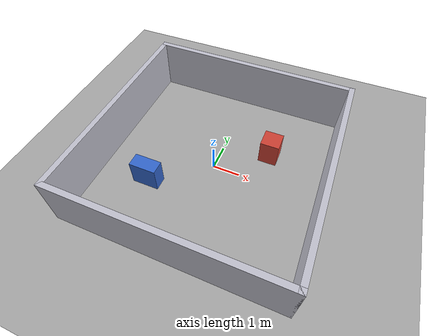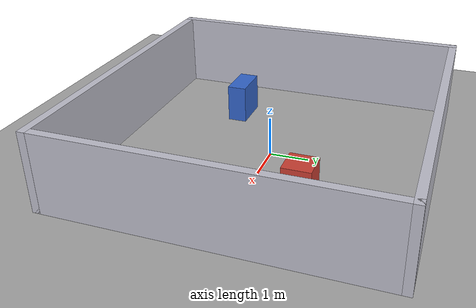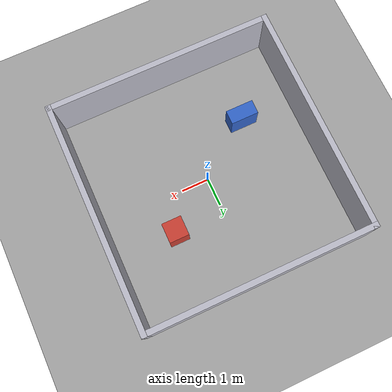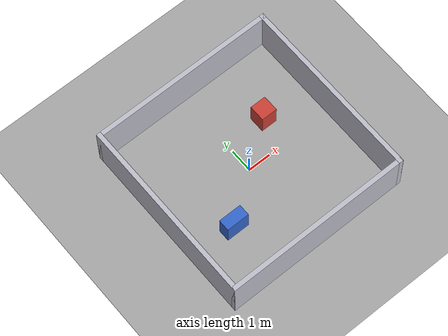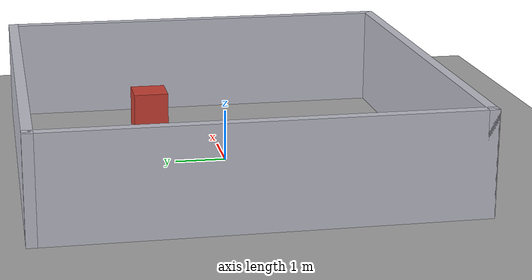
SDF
<?xml version="1.0" ?>
<sdf version="1.8">
  <world name="slam_demo">
    <physics name="default_physics" type="ode">
      <max_step_size>0.001</max_step_size>
      <real_time_factor>1</real_time_factor>
      <real_time_update_rate>1000</real_time_update_rate>
    </physics>
    <plugin filename="ignition-gazebo-physics-system" name="ignition::gazebo::systems::Physics"/>
    <plugin filename="ignition-gazebo-user-commands-system" name="ignition::gazebo::systems::UserCommands"/>
    <plugin filename="ignition-gazebo-scene-broadcaster-system" name="ignition::gazebo::systems::SceneBroadcaster"/>
    <plugin filename="ignition-gazebo-sensors-system" name="ignition::gazebo::systems::Sensors"><render_engine>ogre2</render_engine></plugin>
    <plugin filename="ignition-gazebo-imu-system" name="ignition::gazebo::systems::Imu"/>
    <plugin filename="ignition-gazebo-contact-system" name="ignition::gazebo::systems::Contact"/>

    <light name="sun" type="directional"><pose>0 0 10 0 0 0</pose><diffuse>0.8 0.8 0.8 1</diffuse><direction>-0.5 0.5 -1</direction></light>
    <model name="ground"><static>true</static><link name="link"><collision name="collision"><geometry><plane><normal>0 0 1</normal><size>20 20</size></plane></geometry></collision><visual name="visual"><geometry><plane><normal>0 0 1</normal><size>20 20</size></plane></geometry><material><diffuse>0.65 0.65 0.65 1</diffuse></material></visual></link></model>

    <!-- 8 x 8 m room and internal landmarks for the 2D SLAM demonstration. -->
    <model name="north_wall"><static>true</static><pose>0 4 1 0 0 0</pose><link name="link"><collision name="collision"><geometry><box><size>8.2 0.2 2</size></box></geometry></collision><visual name="visual"><geometry><box><size>8.2 0.2 2</size></box></geometry><material><diffuse>0.75 0.75 0.8 1</diffuse></material></visual></link></model>
    <model name="south_wall"><static>true</static><pose>0 -4 1 0 0 0</pose><link name="link"><collision name="collision"><geometry><box><size>8.2 0.2 2</size></box></geometry></collision><visual name="visual"><geometry><box><size>8.2 0.2 2</size></box></geometry><material><diffuse>0.75 0.75 0.8 1</diffuse></material></visual></link></model>
    <model name="east_wall"><static>true</static><pose>4 0 1 0 0 0</pose><link name="link"><collision name="collision"><geometry><box><size>0.2 8.2 2</size></box></geometry></collision><visual name="visual"><geometry><box><size>0.2 8.2 2</size></box></geometry><material><diffuse>0.75 0.75 0.8 1</diffuse></material></visual></link></model>
    <model name="west_wall"><static>true</static><pose>-4 0 1 0 0 0</pose><link name="link"><collision name="collision"><geometry><box><size>0.2 8.2 2</size></box></geometry></collision><visual name="visual"><geometry><box><size>0.2 8.2 2</size></box></geometry><material><diffuse>0.75 0.75 0.8 1</diffuse></material></visual></link></model>
    <model name="landmark_a"><static>true</static><pose>1.8 1.3 0.5 0 0 0</pose><link name="link"><collision name="collision"><geometry><box><size>0.7 0.7 1</size></box></geometry></collision><visual name="visual"><geometry><box><size>0.7 0.7 1</size></box></geometry><material><diffuse>0.8 0.25 0.2 1</diffuse></material></visual></link></model>
    <model name="landmark_b"><static>true</static><pose>-2 -1.5 0.5 0 0 0</pose><link name="link"><collision name="collision"><geometry><box><size>1.0 0.5 1</size></box></geometry></collision><visual name="visual"><geometry><box><size>1.0 0.5 1</size></box></geometry><material><diffuse>0.2 0.4 0.8 1</diffuse></material></visual></link></model>
    <scene><ambient>0.6 0.6 0.6 1</ambient><background>0.7 0.7 0.7 1</background><shadows>false</shadows></scene>
    <gravity>0 0 -9.8</gravity>
  </world>
</sdf>
